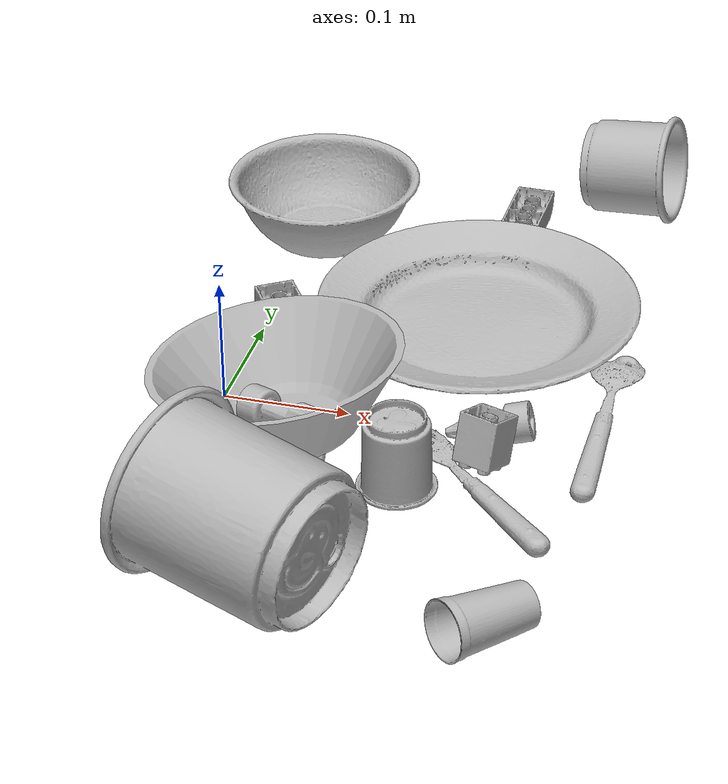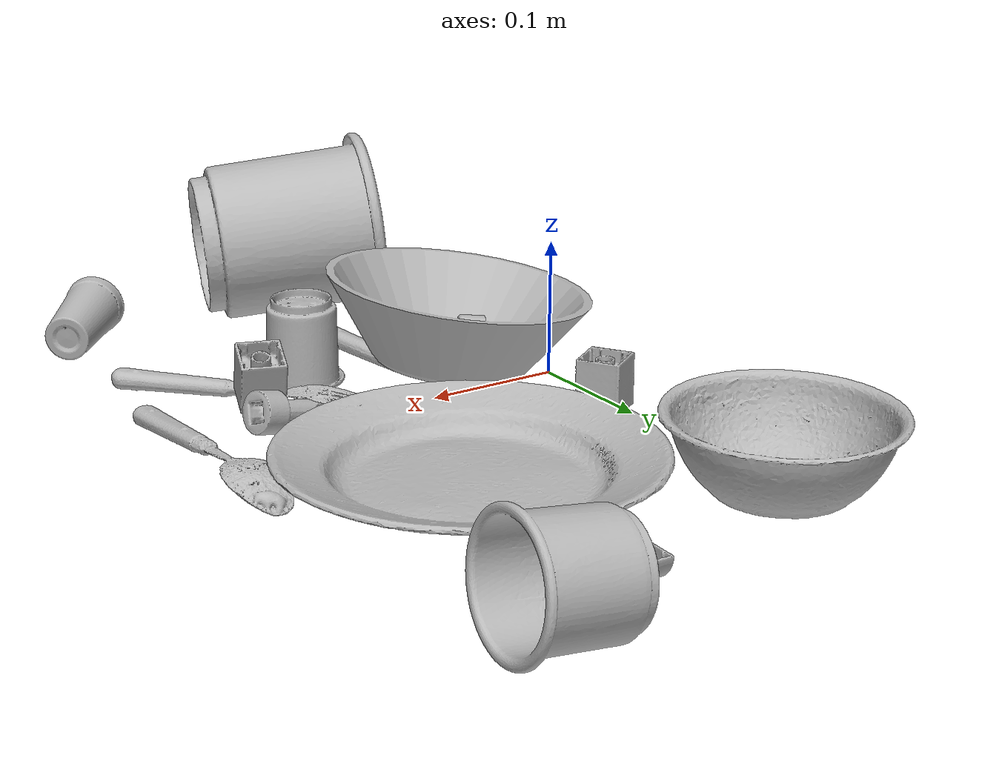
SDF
<sdf version="1.4">
  <world name="default">
    <light name="light1" type="point">
      <pose>0 0 1 0 0 0</pose>
      <diffuse>3 3 3 1</diffuse>
      <specular>3 3 3 1</specular>
    </light>
    <light name="light2" type="point">
      <pose>0 0.5 2 0 0 0</pose>
      <diffuse>1 1 1 1</diffuse>
      <specular>1 1 1 1</specular>
    </light>
    <light name="light3" type="point">
      <pose>0 0.5 2 0 0 0</pose>
      <diffuse>3 3 3 1</diffuse>
      <specular>3 3 3 1</specular>
    </light>
    <scene>
      <ambient>0.7 0.7 0.7</ambient>
    </scene>
    <model name="plate1">
      <link name="link_plate1">
        <collision name="default">
          <geometry>
            <mesh>
              <uri>model://plate/collision_meshes/collision.obj</uri>
              <scale>1.0 1.0 1.0</scale>
            </mesh>
          </geometry>
          <surface>
            <friction>
              <ode>
                <mu>0.5</mu>
                <mu2>0.5</mu2>
              </ode>
            </friction>
          <contact>
        <ode>
            <max_vel>0</max_vel>
            <min_depth>0.0001</min_depth>
            <kp>1e8</kp>
        </ode>
    </contact></surface>
        </collision>
        <visual name="default">
          <geometry>
            <mesh>
              <uri>model://plate/visual_meshes/visual.dae</uri>
              <scale>1.0 1.0 1.0</scale>
            </mesh>
          </geometry>
        </visual>
        <inertial>
          <mass>0.188415065407753</mass>
          <pose>-0.0006044681649655104 0.0002782578521873802 -0.0010561991948634386 0.0022187970116661695 -0.0032254679619122127 0.4526056514331616</pose>
          <inertia>
            <ixx>0.00088140933</ixx>
            <iyy>0.000872979</iyy>
            <izz>0.0017239053</izz>
            <ixy>0</ixy>
            <ixz>0</ixz>
            <iyz>0</iyz>
          </inertia>
        </inertial>
      </link>
      <pose>0.16641579568386078 0.14619703590869904 0.013732997700572014 -1.6482828716873405e-07 1.2949407999794183e-08 0.6956070786489851</pose>
    </model>
    <model name="cup1">
      <link name="link_cup1">
        <collision name="default">
          <geometry>
            <mesh>
              <uri>model://d_cups/collision_meshes/collision.obj</uri>
              <scale>2.0 2.0 2.0</scale>
            </mesh>
          </geometry>
          <surface>
            <friction>
              <ode>
                <mu>0.5</mu>
                <mu2>0.5</mu2>
              </ode>
            </friction>
          <contact>
        <ode>
            <max_vel>0</max_vel>
            <min_depth>0.0001</min_depth>
            <kp>1e8</kp>
        </ode>
    </contact></surface>
        </collision>
        <visual name="default">
          <geometry>
            <mesh>
              <uri>model://d_cups/visual_meshes/visual.dae</uri>
              <scale>2.0 2.0 2.0</scale>
            </mesh>
          </geometry>
        </visual>
        <inertial>
          <mass>0.39843064546585083</mass>
          <pose>0.0016136104241013527 0.0038234808016568422 -0.004533304367214441 0.24012134810188138 -0.24709791903716813 0.5942561701250738</pose>
          <inertia>
            <ixx>0.0013343208</ixx>
            <iyy>0.001330459</iyy>
            <izz>0.001207787</izz>
            <ixy>0</ixy>
            <ixz>0</ixz>
            <iyz>0</iyz>
          </inertia>
        </inertial>
      </link>
      <pose>0.091912642121315 -0.23236869275569916 0.06484418362379074 -1.4778957484996007 -0.005597755700186374 1.2130361879285372</pose>
    </model>
    <model name="silverware1">
      <link name="link_silverware1">
        <collision name="default">
          <geometry>
            <mesh>
              <uri>model://knife/collision_meshes/collision.obj</uri>
              <scale>1.0 1.0 1.0</scale>
            </mesh>
          </geometry>
          <surface>
            <friction>
              <ode>
                <mu>0.5</mu>
                <mu2>0.5</mu2>
              </ode>
            </friction>
          <contact>
        <ode>
            <max_vel>0</max_vel>
            <min_depth>0.0001</min_depth>
            <kp>1e8</kp>
        </ode>
    </contact></surface>
        </collision>
        <visual name="default">
          <geometry>
            <mesh>
              <uri>model://knife/visual_meshes/visual.dae</uri>
              <scale>1.0 1.0 1.0</scale>
            </mesh>
          </geometry>
        </visual>
        <inertial>
          <mass>0.027211036533117294</mass>
          <pose>-0.02378525771200657 0.0015275125624611974 5.062023410573602e-05 0.0730549860308878 0.01724841828598218 -0.007409817457274567</pose>
          <inertia>
            <ixx>7.723595e-07</ixx>
            <iyy>0.000104540384</iyy>
            <izz>0.00010478913</izz>
            <ixy>0</ixy>
            <ixz>0</ixz>
            <iyz>0</iyz>
          </inertia>
        </inertial>
      </link>
      <pose>0.08520866930484772 -0.04158339649438858 0.005934909917414188 3.056935589703702 0.04341979973755671 1.7720925979701023</pose>
    </model>
    <model name="silverware2">
      <link name="link_silverware2">
        <collision name="default">
          <geometry>
            <mesh>
              <uri>model://fork/collision_meshes/collision.obj</uri>
              <scale>1.0 1.0 1.0</scale>
            </mesh>
          </geometry>
          <surface>
            <friction>
              <ode>
                <mu>0.5</mu>
                <mu2>0.5</mu2>
              </ode>
            </friction>
          <contact>
        <ode>
            <max_vel>0</max_vel>
            <min_depth>0.0001</min_depth>
            <kp>1e8</kp>
        </ode>
    </contact></surface>
        </collision>
        <visual name="default">
          <geometry>
            <mesh>
              <uri>model://fork/visual_meshes/visual.dae</uri>
              <scale>1.0 1.0 1.0</scale>
            </mesh>
          </geometry>
        </visual>
        <inertial>
          <mass>0.01567319966852665</mass>
          <pose>-0.029570044949650764 0.00046588233090005815 0.0003218860656488687 -0.013551693849150472 -0.010977837004960822 0.014453899894816049</pose>
          <inertia>
            <ixx>5.494343e-07</ixx>
            <iyy>4.0918225e-05</iyy>
            <izz>4.1163967e-05</izz>
            <ixy>0</ixy>
            <ixz>0</ixz>
            <iyz>0</iyz>
          </inertia>
        </inertial>
      </link>
      <pose>0.21422238647937775 -0.07429352402687073 0.007446253672242165 -3.064073807316961 0.0028347539005007063 2.356847786694942</pose>
    </model>
    <model name="silverware3">
      <link name="link_silverware3">
        <collision name="default">
          <geometry>
            <mesh>
              <uri>model://spoon/collision_meshes/collision.obj</uri>
              <scale>1.0 1.0 1.0</scale>
            </mesh>
          </geometry>
          <surface>
            <friction>
              <ode>
                <mu>0.5</mu>
                <mu2>0.5</mu2>
              </ode>
            </friction>
          <contact>
        <ode>
            <max_vel>0</max_vel>
            <min_depth>0.0001</min_depth>
            <kp>1e8</kp>
        </ode>
    </contact></surface>
        </collision>
        <visual name="default">
          <geometry>
            <mesh>
              <uri>model://spoon/visual_meshes/visual.dae</uri>
              <scale>1.0 1.0 1.0</scale>
            </mesh>
          </geometry>
        </visual>
        <inertial>
          <mass>0.020675545558333397</mass>
          <pose>-0.0055263228714466095 -0.001603417913429439 -0.0007271659560501575 0.03521671071703309 -0.03906584129558259 0.006150610048623938</pose>
          <inertia>
            <ixx>1.1500075e-06</ixx>
            <iyy>7.866978e-05</iyy>
            <izz>7.923691e-05</izz>
            <ixy>0</ixy>
            <ixz>0</ixz>
            <iyz>0</iyz>
          </inertia>
        </inertial>
      </link>
      <pose>0.29511764645576477 0.026437614113092422 0.010133594274520874 3.1050048966224146 -0.06197778055193451 1.5969171433866247</pose>
    </model>
    <model name="cup3">
      <link name="link_cup3">
        <collision name="default">
          <geometry>
            <mesh>
              <uri>model://h_cups/collision_meshes/collision.obj</uri>
              <scale>1.0 1.0 1.0</scale>
            </mesh>
          </geometry>
          <surface>
            <friction>
              <ode>
                <mu>0.5</mu>
                <mu2>0.5</mu2>
              </ode>
            </friction>
          <contact>
        <ode>
            <max_vel>0</max_vel>
            <min_depth>0.0001</min_depth>
            <kp>1e8</kp>
        </ode>
    </contact></surface>
        </collision>
        <visual name="default">
          <geometry>
            <mesh>
              <uri>model://h_cups/visual_meshes/visual.dae</uri>
              <scale>1.0 1.0 1.0</scale>
            </mesh>
          </geometry>
        </visual>
        <inertial>
          <mass>0.08491484075784683</mass>
          <pose>-2.702520214370452e-05 0.00023018663341645151 -0.0018405397422611713 -0.02436220805872295 0.06545280106490914 0.1288526015338695</pose>
          <inertia>
            <ixx>0.000109663546</ixx>
            <iyy>0.00010835491</iyy>
            <izz>0.00011500697</izz>
            <ixy>0</ixy>
            <ixz>0</ixz>
            <iyz>0</iyz>
          </inertia>
        </inertial>
      </link>
      <pose>0.25009217858314514 0.36546504497528076 0.042147938162088394 -1.4487243522773985 0.6426256328561162 -1.576615749512351</pose>
    </model>
    <model name="cup4">
      <link name="link_cup4">
        <collision name="default">
          <geometry>
            <mesh>
              <uri>model://cup_small/collision_meshes/collision.obj</uri>
              <scale>1.0 1.0 1.0</scale>
            </mesh>
          </geometry>
          <surface>
            <friction>
              <ode>
                <mu>0.5</mu>
                <mu2>0.5</mu2>
              </ode>
            </friction>
          <contact>
        <ode>
            <max_vel>0</max_vel>
            <min_depth>0.0001</min_depth>
            <kp>1e8</kp>
        </ode>
    </contact></surface>
        </collision>
        <visual name="default">
          <geometry>
            <mesh>
              <uri>model://cup_small/visual_meshes/visual.dae</uri>
              <scale>1.0 1.0 1.0</scale>
            </mesh>
          </geometry>
        </visual>
        <inertial>
          <mass>0.024220753461122513</mass>
          <pose>0.00010482438665349036 -0.00033778438228182495 -0.010742821730673313 -0.011493274197159384 -0.01528013747447056 -0.5058088438882253</pose>
          <inertia>
            <ixx>1.4260815e-05</ixx>
            <iyy>1.433438e-05</iyy>
            <izz>6.4388e-06</izz>
            <ixy>0</ixy>
            <ixz>0</ixz>
            <iyz>0</iyz>
          </inertia>
        </inertial>
      </link>
      <pose>0.26424363255500793 -0.24082642793655396 0.020201411098241806 0.8594228679969089 -1.4498810057573361 -0.030765858107273062</pose>
    </model>
    <model name="cup5">
      <link name="link_cup5">
        <collision name="default">
          <geometry>
            <mesh>
              <uri>model://b_cups/collision_meshes/collision.obj</uri>
              <scale>1.0 1.0 1.0</scale>
            </mesh>
          </geometry>
          <surface>
            <friction>
              <ode>
                <mu>0.5</mu>
                <mu2>0.5</mu2>
              </ode>
            </friction>
          <contact>
        <ode>
            <max_vel>0</max_vel>
            <min_depth>0.0001</min_depth>
            <kp>1e8</kp>
        </ode>
    </contact></surface>
        </collision>
        <visual name="default">
          <geometry>
            <mesh>
              <uri>model://b_cups/visual_meshes/visual.dae</uri>
              <scale>1.0 1.0 1.0</scale>
            </mesh>
          </geometry>
        </visual>
        <inertial>
          <mass>0.049698356539011</mass>
          <pose>0.0005182003951631486 0.0018058595014736056 -0.0013381819007918239 0.1135633586286738 0.03872473724046268 -0.3456911343663658</pose>
          <inertia>
            <ixx>3.2531058e-05</ixx>
            <iyy>3.1913434e-05</iyy>
            <izz>2.7374275e-05</izz>
            <ixy>0</ixy>
            <ixz>0</ixz>
            <iyz>0</iyz>
          </inertia>
        </inertial>
      </link>
      <pose>0.16032665967941284 -0.08379791676998138 0.032155025750398636 3.141586846248304 2.5988225233967444e-06 1.4652454085639988</pose>
    </model>
    <model name="bowl1">
      <link name="link_bowl1">
        <collision name="default">
          <geometry>
            <mesh>
              <uri>model://bowl/collision_meshes/collision.obj</uri>
              <scale>1.0 1.0 1.0</scale>
            </mesh>
          </geometry>
          <surface>
            <friction>
              <ode>
                <mu>0.5</mu>
                <mu2>0.5</mu2>
              </ode>
            </friction>
          <contact>
        <ode>
            <max_vel>0</max_vel>
            <min_depth>0.0001</min_depth>
            <kp>1e8</kp>
        </ode>
    </contact></surface>
        </collision>
        <visual name="default">
          <geometry>
            <mesh>
              <uri>model://bowl/visual_meshes/visual.dae</uri>
              <scale>1.0 1.0 1.0</scale>
            </mesh>
          </geometry>
        </visual>
        <inertial>
          <mass>0.10713337361812592</mass>
          <pose>0.00020444899564608932 -0.001030207029543817 -0.0008042642148211598 -0.015763984617069283 0.014546905390658569 0.7140476331316008</pose>
          <inertia>
            <ixx>0.0002460938</ixx>
            <iyy>0.00024059511</iyy>
            <izz>0.00041401442</izz>
            <ixy>0</ixy>
            <ixz>0</ixz>
            <iyz>0</iyz>
          </inertia>
        </inertial>
      </link>
      <pose>0.004607840441167355 0.26190564036369324 0.02778000570833683 7.37901237564075e-08 4.662766860664772e-08 0.3908929876773281</pose>
    </model>
    <model name="bowl2">
      <link name="link_bowl2">
        <collision name="default">
          <geometry>
            <mesh>
              <uri>model://bowl_a/collision_meshes/collision.obj</uri>
              <scale>1.0 1.0 1.0</scale>
            </mesh>
          </geometry>
          <surface>
            <friction>
              <ode>
                <mu>0.5</mu>
                <mu2>0.5</mu2>
              </ode>
            </friction>
          <contact>
        <ode>
            <max_vel>0</max_vel>
            <min_depth>0.0001</min_depth>
            <kp>1e8</kp>
        </ode>
    </contact></surface>
        </collision>
        <visual name="default">
          <geometry>
            <mesh>
              <uri>model://bowl_a/visual_meshes/visual.dae</uri>
              <scale>1.0 1.0 1.0</scale>
            </mesh>
          </geometry>
        </visual>
        <inertial>
          <mass>0.5226007103919983</mass>
          <pose>0.00027867400785908103 4.731409717351198e-05 -0.0013765293406322598 -0.0009805372975616423 -0.0010938241101444716 -0.19123543414166835</pose>
          <inertia>
            <ixx>0.0014878683</ixx>
            <iyy>0.0014970028</iyy>
            <izz>0.0026462309</izz>
            <ixy>0</ixy>
            <ixz>0</ixz>
            <iyz>0</iyz>
          </inertia>
        </inertial>
      </link>
      <pose>0.05836065858602524 -0.03916654735803604 0.03774983435869217 0.02179040538830937 -0.13564831897775695 -0.395281914657072</pose>
    </model>
    <model name="toy1">
      <link name="link_toy1">
        <collision name="default">
          <geometry>
            <mesh>
              <uri>model://f_lego_duplo/collision_meshes/collision.obj</uri>
              <scale>1.0 1.0 1.0</scale>
            </mesh>
          </geometry>
          <surface>
            <friction>
              <ode>
                <mu>0.5</mu>
                <mu2>0.5</mu2>
              </ode>
            </friction>
          <contact>
        <ode>
            <max_vel>0</max_vel>
            <min_depth>0.0001</min_depth>
            <kp>1e8</kp>
        </ode>
    </contact></surface>
        </collision>
        <visual name="default">
          <geometry>
            <mesh>
              <uri>model://f_lego_duplo/visual_meshes/visual.dae</uri>
              <scale>1.0 1.0 1.0</scale>
            </mesh>
          </geometry>
        </visual>
        <inertial>
          <mass>0.04674473777413368</mass>
          <pose>2.3694283299846575e-05 0.00013393160770647228 0.0018837876850739121 0.029838743240884653 -0.014424615896258132 -0.6756775311218791</pose>
          <inertia>
            <ixx>9.877422e-06</ixx>
            <iyy>9.965418e-06</iyy>
            <izz>8.57402e-06</izz>
            <ixy>0</ixy>
            <ixz>0</ixz>
            <iyz>0</iyz>
          </inertia>
        </inertial>
      </link>
      <pose>0.21670018136501312 -0.04333597794175148 0.02462133951485157 -2.838734901526813 -0.005684413315302221 2.8157089061609777</pose>
    </model>
    <model name="toy2">
      <link name="link_toy2">
        <collision name="default">
          <geometry>
            <mesh>
              <uri>model://b_lego_duplo/collision_meshes/collision.obj</uri>
              <scale>1.0 1.0 1.0</scale>
            </mesh>
          </geometry>
          <surface>
            <friction>
              <ode>
                <mu>0.5</mu>
                <mu2>0.5</mu2>
              </ode>
            </friction>
          <contact>
        <ode>
            <max_vel>0</max_vel>
            <min_depth>0.0001</min_depth>
            <kp>1e8</kp>
        </ode>
    </contact></surface>
        </collision>
        <visual name="default">
          <geometry>
            <mesh>
              <uri>model://b_lego_duplo/visual_meshes/visual.dae</uri>
              <scale>1.0 1.0 1.0</scale>
            </mesh>
          </geometry>
        </visual>
        <inertial>
          <mass>0.046308279037475586</mass>
          <pose>-0.00011053026537410915 -9.152292477665469e-06 0.001929429010488093 -0.03749474318211287 -0.02635425030857695 0.451892682452606</pose>
          <inertia>
            <ixx>9.477338e-06</ixx>
            <iyy>9.541048e-06</iyy>
            <izz>8.443999e-06</izz>
            <ixy>0</ixy>
            <ixz>0</ixz>
            <iyz>0</iyz>
          </inertia>
        </inertial>
      </link>
      <pose>0.01736890710890293 0.09018675982952118 0.021816585212945938 -3.140062989994733 -0.001720882473028874 -0.9927806896886702</pose>
    </model>
    <model name="toy3">
      <link name="link_toy3">
        <collision name="default">
          <geometry>
            <mesh>
              <uri>model://c_toy_airplane/collision_meshes/collision.obj</uri>
              <scale>1.0 1.0 1.0</scale>
            </mesh>
          </geometry>
          <surface>
            <friction>
              <ode>
                <mu>0.5</mu>
                <mu2>0.5</mu2>
              </ode>
            </friction>
          <contact>
        <ode>
            <max_vel>0</max_vel>
            <min_depth>0.0001</min_depth>
            <kp>1e8</kp>
        </ode>
    </contact></surface>
        </collision>
        <visual name="default">
          <geometry>
            <mesh>
              <uri>model://c_toy_airplane/visual_meshes/visual.dae</uri>
              <scale>1.0 1.0 1.0</scale>
            </mesh>
          </geometry>
        </visual>
        <inertial>
          <mass>0.03609102964401245</mass>
          <pose>-0.00023024271649774164 -4.429565194641327e-07 -0.006080531980842352 -0.006192551548155338 -0.01679780015794874 0.7654806130326979</pose>
          <inertia>
            <ixx>1.6572261e-05</ixx>
            <iyy>1.6525488e-05</iyy>
            <izz>3.890839e-06</izz>
            <ixy>0</ixy>
            <ixz>0</ixz>
            <iyz>0</iyz>
          </inertia>
        </inertial>
      </link>
      <pose>0.06302707642316818 -0.05201983079314232 0.027416467666625977 1.4572619954659287 -0.21444778238325082 1.1406423122555884</pose>
    </model>
    <model name="toy4">
      <link name="link_toy4">
        <collision name="default">
          <geometry>
            <mesh>
              <uri>model://d_toy_airplane/collision_meshes/collision.obj</uri>
              <scale>1.0 1.0 1.0</scale>
            </mesh>
          </geometry>
          <surface>
            <friction>
              <ode>
                <mu>0.5</mu>
                <mu2>0.5</mu2>
              </ode>
            </friction>
          <contact>
        <ode>
            <max_vel>0</max_vel>
            <min_depth>0.0001</min_depth>
            <kp>1e8</kp>
        </ode>
    </contact></surface>
        </collision>
        <visual name="default">
          <geometry>
            <mesh>
              <uri>model://d_toy_airplane/visual_meshes/visual.dae</uri>
              <scale>1.0 1.0 1.0</scale>
            </mesh>
          </geometry>
        </visual>
        <inertial>
          <mass>0.017463792115449905</mass>
          <pose>9.410289203515276e-05 -5.80932101001963e-05 -0.011728095822036266 0.00026611357398368453 0.004679028940218743 0.5192826772494831</pose>
          <inertia>
            <ixx>5.2353053e-06</ixx>
            <iyy>5.239254e-06</iyy>
            <izz>1.5805728e-06</izz>
            <ixy>0</ixy>
            <ixz>0</ixz>
            <iyz>0</iyz>
          </inertia>
        </inertial>
      </link>
      <pose>0.21139374375343323 -0.006021485663950443 0.011268386617302895 -1.8055385854033499 -0.2103867413584873 1.7856274628907371</pose>
    </model>
    <model name="toy5">
      <link name="link_toy5">
        <collision name="default">
          <geometry>
            <mesh>
              <uri>model://a_lego_duplo/collision_meshes/collision.obj</uri>
              <scale>1.0 1.0 1.0</scale>
            </mesh>
          </geometry>
          <surface>
            <friction>
              <ode>
                <mu>0.5</mu>
                <mu2>0.5</mu2>
              </ode>
            </friction>
          <contact>
        <ode>
            <max_vel>0</max_vel>
            <min_depth>0.0001</min_depth>
            <kp>1e8</kp>
        </ode>
    </contact></surface>
        </collision>
        <visual name="default">
          <geometry>
            <mesh>
              <uri>model://a_lego_duplo/visual_meshes/visual.dae</uri>
              <scale>1.0 1.0 1.0</scale>
            </mesh>
          </geometry>
        </visual>
        <inertial>
          <mass>0.016317613422870636</mass>
          <pose>-0.00011337783507769927 0.00018517576972953975 0.00036926058237440884 -0.01411698761390393 -0.0001256633936569927 6.142942133676727e-05</pose>
          <inertia>
            <ixx>2.0920475e-06</ixx>
            <iyy>4.6866458e-06</iyy>
            <izz>5.8054516e-06</izz>
            <ixy>0</ixy>
            <ixz>0</ixz>
            <iyz>0</iyz>
          </inertia>
        </inertial>
      </link>
      <pose>0.17090581357479095 0.309341162443161 0.012124796397984028 -3.141285133635299 -0.015581410117941888 -1.5863345844115397</pose>
    </model>
  <physics type="ode">
      <max_contacts>50</max_contacts>
      <ode>
        <solver>
          <type>quick</type>
          <iters>75</iters>
        </solver>
        <constraints>
          <contact_max_correcting_vel>0</contact_max_correcting_vel>
          <contact_surface_layer>0</contact_surface_layer>
        </constraints>
      </ode>
    </physics></world>
</sdf>
